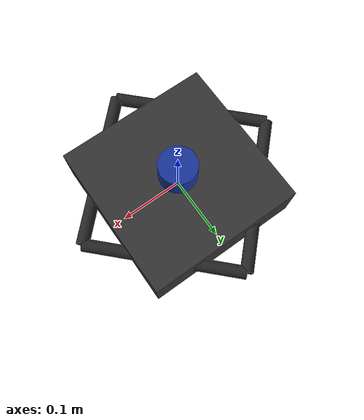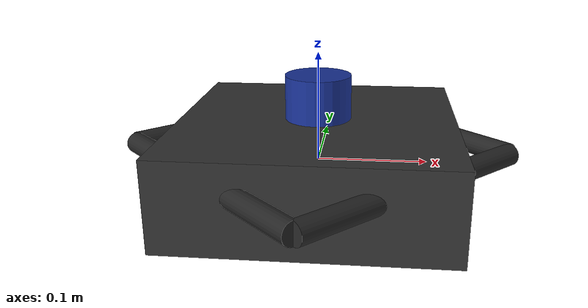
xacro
<?xml version="1.0"?>
<robot name="phoenix_drone" xmlns:xacro="http://www.ros.org/wiki/xacro">

  <!--  BASE LINK (drone body)         -->
  <link name="base_link">
    <visual>
      <geometry>
        <box size="0.25 0.25 0.08"/>
      </geometry>
      <material name="dark_grey">
        <color rgba="0.2 0.2 0.2 1.0"/>
      </material>
    </visual>
    <collision>
      <geometry>
        <box size="0.25 0.25 0.08"/>
      </geometry>
    </collision>
    <inertial>
      <mass value="2.0"/>
      <inertia ixx="0.029125" ixy="0" ixz="0"
               iyy="0.029125" iyz="0"
               izz="0.055625"/>
    </inertial>
  </link>

  <!--  BASE_FOOTPRINT (ground proj)   -->
  <link name="base_footprint"/>
  <joint name="base_footprint_joint" type="fixed">
    <parent link="base_footprint"/>
    <child link="base_link"/>
    <origin xyz="0 0 0" rpy="0 0 0"/>
  </joint>

  <!--  ROTOR ARMS                     -->

  <!-- Front-Right arm -->
  <link name="rotor_fr_link">
    <visual>
      <geometry>
        <cylinder radius="0.01" length="0.246"/>
      </geometry>
      <material name="carbon">
        <color rgba="0.15 0.15 0.15 1.0"/>
      </material>
    </visual>
  </link>
  <joint name="rotor_fr_joint" type="fixed">
    <parent link="base_link"/>
    <child link="rotor_fr_link"/>
    <origin xyz="0.087 -0.087 0.01" rpy="0 1.5708 0.7854"/>
  </joint>

  <!-- Front-Left arm -->
  <link name="rotor_fl_link">
    <visual>
      <geometry>
        <cylinder radius="0.01" length="0.246"/>
      </geometry>
      <material name="carbon">
        <color rgba="0.15 0.15 0.15 1.0"/>
      </material>
    </visual>
  </link>
  <joint name="rotor_fl_joint" type="fixed">
    <parent link="base_link"/>
    <child link="rotor_fl_link"/>
    <origin xyz="0.087 0.087 0.01" rpy="0 1.5708 -0.7854"/>
  </joint>

  <!-- Rear-Left arm -->
  <link name="rotor_rl_link">
    <visual>
      <geometry>
        <cylinder radius="0.01" length="0.246"/>
      </geometry>
      <material name="carbon">
        <color rgba="0.15 0.15 0.15 1.0"/>
      </material>
    </visual>
  </link>
  <joint name="rotor_rl_joint" type="fixed">
    <parent link="base_link"/>
    <child link="rotor_rl_link"/>
    <origin xyz="-0.087 0.087 0.01" rpy="0 1.5708 0.7854"/>
  </joint>

  <!-- Rear-Right arm -->
  <link name="rotor_rr_link">
    <visual>
      <geometry>
        <cylinder radius="0.01" length="0.246"/>
      </geometry>
      <material name="carbon">
        <color rgba="0.15 0.15 0.15 1.0"/>
      </material>
    </visual>
  </link>
  <joint name="rotor_rr_joint" type="fixed">
    <parent link="base_link"/>
    <child link="rotor_rr_link"/>
    <origin xyz="-0.087 -0.087 0.01" rpy="0 1.5708 -0.7854"/>
  </joint>

  <!--  CAMERA (downward-facing)       -->
  <link name="camera_link">
    <visual>
      <geometry>
        <box size="0.03 0.03 0.02"/>
      </geometry>
      <material name="camera_black">
        <color rgba="0.1 0.1 0.1 1.0"/>
      </material>
    </visual>
  </link>
  <joint name="camera_joint" type="fixed">
    <parent link="base_link"/>
    <child link="camera_link"/>
    <origin xyz="0.05 0 -0.05" rpy="0 1.5708 0"/>
  </joint>

  <!-- Camera optical frame (Z forward, X right, Y down) -->
  <link name="camera_optical_frame"/>
  <joint name="camera_optical_joint" type="fixed">
    <parent link="camera_link"/>
    <child link="camera_optical_frame"/>
    <origin xyz="0 0 0" rpy="-1.5708 0 -1.5708"/>
  </joint>

  <!--  LIDAR (2D planar scanner)      -->
  <link name="lidar_link">
    <visual>
      <geometry>
        <cylinder radius="0.03" length="0.04"/>
      </geometry>
      <material name="lidar_blue">
        <color rgba="0.1 0.2 0.6 1.0"/>
      </material>
    </visual>
  </link>
  <joint name="lidar_joint" type="fixed">
    <parent link="base_link"/>
    <child link="lidar_link"/>
    <origin xyz="0 0 0.06" rpy="0 0 0"/>
  </joint>

  <!--  IMU                            -->
  <link name="imu_link"/>
  <joint name="imu_joint" type="fixed">
    <parent link="base_link"/>
    <child link="imu_link"/>
    <origin xyz="0 0 0" rpy="0 0 0"/>
  </joint>

  <!--  GPS                            -->
  <link name="gps_link"/>
  <joint name="gps_joint" type="fixed">
    <parent link="base_link"/>
    <child link="gps_link"/>
    <origin xyz="0 0 0.04" rpy="0 0 0"/>
  </joint>

</robot>
